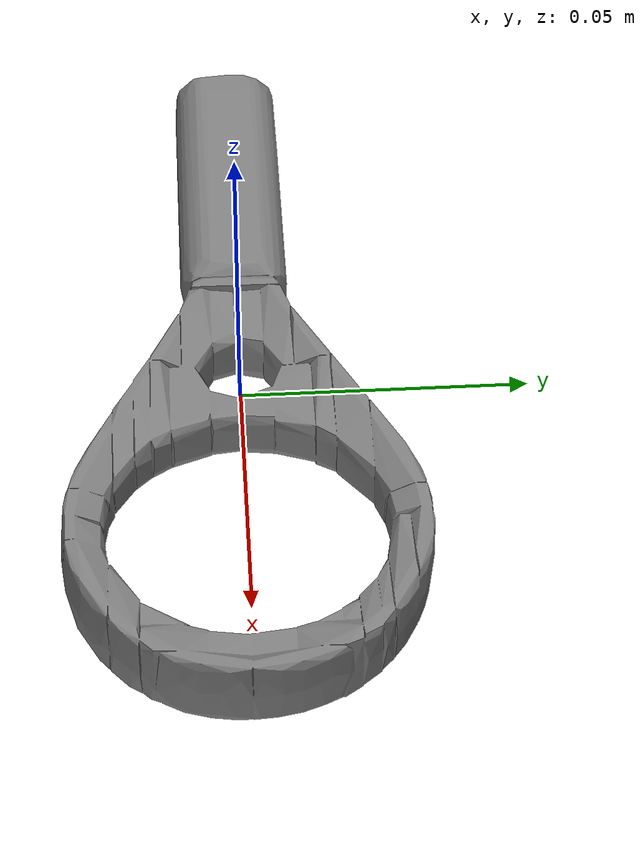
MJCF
<mujoco model="magnifying_glass_Magnifying_Glassassrt_M">
  <default>
    <default class="visual">
      <geom group="2" type="mesh" contype="0" conaffinity="0" />
    </default>
    <default class="collision">
      <geom group="3" type="mesh" />
    </default>
  </default>
  <asset>
    <mesh file="magnifying_glass_Magnifying_Glassassrt_M.stl" />
    <mesh file="magnifying_glass_Magnifying_Glassassrt_M_collision_0.stl" />
    <mesh file="magnifying_glass_Magnifying_Glassassrt_M_collision_1.stl" />
    <mesh file="magnifying_glass_Magnifying_Glassassrt_M_collision_2.stl" />
    <mesh file="magnifying_glass_Magnifying_Glassassrt_M_collision_3.stl" />
    <mesh file="magnifying_glass_Magnifying_Glassassrt_M_collision_4.stl" />
    <mesh file="magnifying_glass_Magnifying_Glassassrt_M_collision_5.stl" />
    <mesh file="magnifying_glass_Magnifying_Glassassrt_M_collision_6.stl" />
    <mesh file="magnifying_glass_Magnifying_Glassassrt_M_collision_7.stl" />
    <mesh file="magnifying_glass_Magnifying_Glassassrt_M_collision_8.stl" />
    <mesh file="magnifying_glass_Magnifying_Glassassrt_M_collision_9.stl" />
    <mesh file="magnifying_glass_Magnifying_Glassassrt_M_collision_10.stl" />
    <mesh file="magnifying_glass_Magnifying_Glassassrt_M_collision_11.stl" />
    <mesh file="magnifying_glass_Magnifying_Glassassrt_M_collision_12.stl" />
    <mesh file="magnifying_glass_Magnifying_Glassassrt_M_collision_13.stl" />
    <mesh file="magnifying_glass_Magnifying_Glassassrt_M_collision_14.stl" />
    <mesh file="magnifying_glass_Magnifying_Glassassrt_M_collision_15.stl" />
  </asset>
  <worldbody>
    <body name="magnifying_glass_Magnifying_Glassassrt_M">
      <geom mesh="magnifying_glass_Magnifying_Glassassrt_M" class="visual" />
      <geom mesh="magnifying_glass_Magnifying_Glassassrt_M_collision_0" class="collision" />
      <geom mesh="magnifying_glass_Magnifying_Glassassrt_M_collision_1" class="collision" />
      <geom mesh="magnifying_glass_Magnifying_Glassassrt_M_collision_2" class="collision" />
      <geom mesh="magnifying_glass_Magnifying_Glassassrt_M_collision_3" class="collision" />
      <geom mesh="magnifying_glass_Magnifying_Glassassrt_M_collision_4" class="collision" />
      <geom mesh="magnifying_glass_Magnifying_Glassassrt_M_collision_5" class="collision" />
      <geom mesh="magnifying_glass_Magnifying_Glassassrt_M_collision_6" class="collision" />
      <geom mesh="magnifying_glass_Magnifying_Glassassrt_M_collision_7" class="collision" />
      <geom mesh="magnifying_glass_Magnifying_Glassassrt_M_collision_8" class="collision" />
      <geom mesh="magnifying_glass_Magnifying_Glassassrt_M_collision_9" class="collision" />
      <geom mesh="magnifying_glass_Magnifying_Glassassrt_M_collision_10" class="collision" />
      <geom mesh="magnifying_glass_Magnifying_Glassassrt_M_collision_11" class="collision" />
      <geom mesh="magnifying_glass_Magnifying_Glassassrt_M_collision_12" class="collision" />
      <geom mesh="magnifying_glass_Magnifying_Glassassrt_M_collision_13" class="collision" />
      <geom mesh="magnifying_glass_Magnifying_Glassassrt_M_collision_14" class="collision" />
      <geom mesh="magnifying_glass_Magnifying_Glassassrt_M_collision_15" class="collision" />
    </body>
  </worldbody>
</mujoco>
